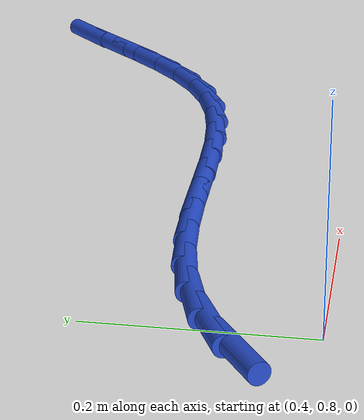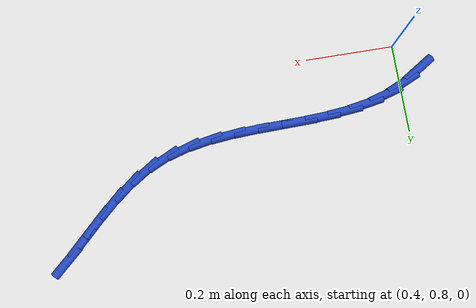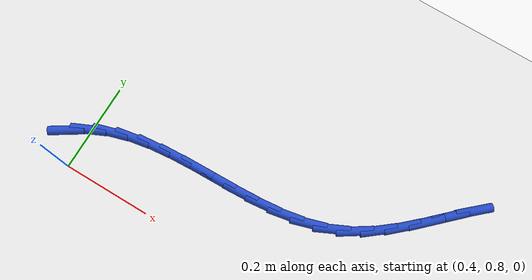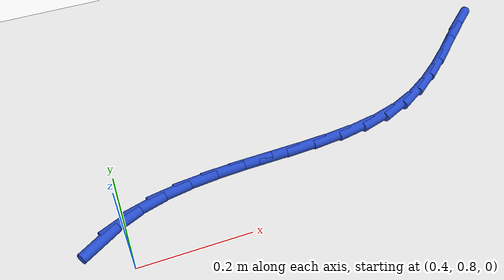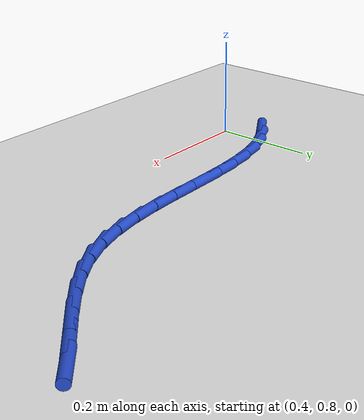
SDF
<sdf version="1.6">
 <world name="default">
  <model name="ground_plane">
   <static>1</static>
   <link name="link">
    <collision name="collision">
     <geometry><plane><normal>0 0 1</normal><size>100 100</size></plane></geometry>
     <surface><friction><ode><mu>100</mu><mu2>50</mu2></ode></friction></surface>
    </collision>
    <visual name="visual">
     <cast_shadows>0</cast_shadows>
     <geometry><plane><normal>0 0 1</normal><size>100 100</size></plane></geometry>
     <material>
      <script><uri>file://media/materials/scripts/gazebo.material</uri><name>Gazebo/WhiteGlow</name></script>
     </material>
    </visual>
   </link>
  </model>
  <model name="line">
   <link name="link_18">
    <pose>0.3543445734203267 0.8636933115231757 0.01 0 1.57 0.5698348710611841</pose>
    <collision name="collision">
     <geometry><cylinder><radius>0.01</radius><length>0.08</length></cylinder></geometry>
    </collision>
    <visual name="visual">
     <material>
      <script><name>Gazebo/Blue</name><uri>file://media/materials/scripts/gazebo.material</uri></script>
     </material>
     <geometry><cylinder><radius>0.01</radius><length>0.08</length></cylinder></geometry>
    </visual>
   </link>
   <link name="link_19">
    <pose>0.3951730558149943 0.8898535739217508 0.01 0 1.57 0.42413232272207957</pose>
    <collision name="collision">
     <geometry><cylinder><radius>0.01</radius><length>0.08</length></cylinder></geometry>
    </collision>
    <visual name="visual">
     <material>
      <script><name>Gazebo/Blue</name><uri>file://media/materials/scripts/gazebo.material</uri></script>
     </material>
     <geometry><cylinder><radius>0.01</radius><length>0.08</length></cylinder></geometry>
    </visual>
   </link>
   <link name="link_20">
    <pose>0.4393437593304431 0.9097983320072475 0.01 0 1.57 0.2817256883511118</pose>
    <collision name="collision">
     <geometry><cylinder><radius>0.01</radius><length>0.08</length></cylinder></geometry>
    </collision>
    <visual name="visual">
     <material>
      <script><name>Gazebo/Blue</name><uri>file://media/materials/scripts/gazebo.material</uri></script>
     </material>
     <geometry><cylinder><radius>0.01</radius><length>0.08</length></cylinder></geometry>
    </visual>
   </link>
   <link name="link_21">
    <pose>0.4867711848116862 0.9235249499548267 0.01 0 1.57 0.17152300022071781</pose>
    <collision name="collision">
     <geometry><cylinder><radius>0.01</radius><length>0.08</length></cylinder></geometry>
    </collision>
    <visual name="visual">
     <material>
      <script><name>Gazebo/Blue</name><uri>file://media/materials/scripts/gazebo.material</uri></script>
     </material>
     <geometry><cylinder><radius>0.01</radius><length>0.08</length></cylinder></geometry>
    </visual>
   </link>
   <link name="link_22">
    <pose>0.5368553760978376 0.9322007895211278 0.01 0 1.57 0.09409261308504</pose>
    <collision name="collision">
     <geometry><cylinder><radius>0.01</radius><length>0.08</length></cylinder></geometry>
    </collision>
    <visual name="visual">
     <material>
      <script><name>Gazebo/Blue</name><uri>file://media/materials/scripts/gazebo.material</uri></script>
     </material>
     <geometry><cylinder><radius>0.01</radius><length>0.08</length></cylinder></geometry>
    </visual>
   </link>
   <link name="link_23">
    <pose>0.5889422566244674 0.9371162951315637 0.01 0 1.57 0.04573571768627673</pose>
    <collision name="collision">
     <geometry><cylinder><radius>0.01</radius><length>0.08</length></cylinder></geometry>
    </collision>
    <visual name="visual">
     <material>
      <script><name>Gazebo/Blue</name><uri>file://media/materials/scripts/gazebo.material</uri></script>
     </material>
     <geometry><cylinder><radius>0.01</radius><length>0.08</length></cylinder></geometry>
    </visual>
   </link>
   <link name="link_24">
    <pose>0.642377749827145 0.9395619112115469 0.01 0 1.57 0.023387020796661953</pose>
    <collision name="collision">
     <geometry><cylinder><radius>0.01</radius><length>0.08</length></cylinder></geometry>
    </collision>
    <visual name="visual">
     <material>
      <script><name>Gazebo/Blue</name><uri>file://media/materials/scripts/gazebo.material</uri></script>
     </material>
     <geometry><cylinder><radius>0.01</radius><length>0.08</length></cylinder></geometry>
    </visual>
   </link>
   <link name="link_25">
    <pose>0.6965077791414405 0.9408280821864908 0.01 0 1.57 0.02541741343297647</pose>
    <collision name="collision">
     <geometry><cylinder><radius>0.01</radius><length>0.08</length></cylinder></geometry>
    </collision>
    <visual name="visual">
     <material>
      <script><name>Gazebo/Blue</name><uri>file://media/materials/scripts/gazebo.material</uri></script>
     </material>
     <geometry><cylinder><radius>0.01</radius><length>0.08</length></cylinder></geometry>
    </visual>
   </link>
   <link name="link_26">
    <pose>0.7506782680029233 0.9422052524818081 0.01 0 1.57 0.051835084882170944</pose>
    <collision name="collision">
     <geometry><cylinder><radius>0.01</radius><length>0.08</length></cylinder></geometry>
    </collision>
    <visual name="visual">
     <material>
      <script><name>Gazebo/Blue</name><uri>file://media/materials/scripts/gazebo.material</uri></script>
     </material>
     <geometry><cylinder><radius>0.01</radius><length>0.08</length></cylinder></geometry>
    </visual>
   </link>
   <link name="link_27">
    <pose>0.804235139847164 0.9449838665229118 0.01 0 1.57 0.10424094520519987</pose>
    <collision name="collision">
     <geometry><cylinder><radius>0.01</radius><length>0.08</length></cylinder></geometry>
    </collision>
    <visual name="visual">
     <material>
      <script><name>Gazebo/Blue</name><uri>file://media/materials/scripts/gazebo.material</uri></script>
     </material>
     <geometry><cylinder><radius>0.01</radius><length>0.08</length></cylinder></geometry>
    </visual>
   </link>
   <link name="link_28">
    <pose>0.8565243181097312 0.9504543687352144 0.01 0 1.57 0.18551952304503483</pose>
    <collision name="collision">
     <geometry><cylinder><radius>0.01</radius><length>0.08</length></cylinder></geometry>
    </collision>
    <visual name="visual">
     <material>
      <script><name>Gazebo/Blue</name><uri>file://media/materials/scripts/gazebo.material</uri></script>
     </material>
     <geometry><cylinder><radius>0.01</radius><length>0.08</length></cylinder></geometry>
    </visual>
   </link>
   <link name="link_29">
    <pose>0.9068917262261957 0.9599072035441296 0.01 0 1.57 0.2988910383332058</pose>
    <collision name="collision">
     <geometry><cylinder><radius>0.01</radius><length>0.08</length></cylinder></geometry>
    </collision>
    <visual name="visual">
     <material>
      <script><name>Gazebo/Blue</name><uri>file://media/materials/scripts/gazebo.material</uri></script>
     </material>
     <geometry><cylinder><radius>0.01</radius><length>0.08</length></cylinder></geometry>
    </visual>
   </link>
   <link name="link_30">
    <pose>0.9546832876321268 0.9746328153750697 0.01 0 1.57 0.44314500986465155</pose>
    <collision name="collision">
     <geometry><cylinder><radius>0.01</radius><length>0.08</length></cylinder></geometry>
    </collision>
    <visual name="visual">
     <material>
      <script><name>Gazebo/Blue</name><uri>file://media/materials/scripts/gazebo.material</uri></script>
     </material>
     <geometry><cylinder><radius>0.01</radius><length>0.08</length></cylinder></geometry>
    </visual>
   </link>
   <link name="link_31">
    <pose>0.9993039648195952 0.9958110510397098 0.01 0 1.57 0.579689639556957</pose>
    <collision name="collision">
     <geometry><cylinder><radius>0.01</radius><length>0.08</length></cylinder></geometry>
    </collision>
    <visual name="visual">
     <material>
      <script><name>Gazebo/Blue</name><uri>file://media/materials/scripts/gazebo.material</uri></script>
     </material>
     <geometry><cylinder><radius>0.01</radius><length>0.08</length></cylinder></geometry>
    </visual>
   </link>
   <link name="link_32">
    <pose>1.0409744091179232 1.0230937309160446 0.01 0 1.57 0.6792841769361144</pose>
    <collision name="collision">
     <geometry><cylinder><radius>0.01</radius><length>0.08</length></cylinder></geometry>
    </collision>
    <visual name="visual">
     <material>
      <script><name>Gazebo/Blue</name><uri>file://media/materials/scripts/gazebo.material</uri></script>
     </material>
     <geometry><cylinder><radius>0.01</radius><length>0.08</length></cylinder></geometry>
    </visual>
   </link>
   <link name="link_33">
    <pose>1.0805102676530278 1.0550180722839213 0.01 0 1.57 0.7424207594840871</pose>
    <collision name="collision">
     <geometry><cylinder><radius>0.01</radius><length>0.08</length></cylinder></geometry>
    </collision>
    <visual name="visual">
     <material>
      <script><name>Gazebo/Blue</name><uri>file://media/materials/scripts/gazebo.material</uri></script>
     </material>
     <geometry><cylinder><radius>0.01</radius><length>0.08</length></cylinder></geometry>
    </visual>
   </link>
   <link name="link_34">
    <pose>1.1187407062930197 1.0900959678208653 0.01 0 1.57 0.771830193548512</pose>
    <collision name="collision">
     <geometry><cylinder><radius>0.01</radius><length>0.08</length></cylinder></geometry>
    </collision>
    <visual name="visual">
     <material>
      <script><name>Gazebo/Blue</name><uri>file://media/materials/scripts/gazebo.material</uri></script>
     </material>
     <geometry><cylinder><radius>0.01</radius><length>0.08</length></cylinder></geometry>
    </visual>
   </link>
   <link name="link_35">
    <pose>1.156494890906009 1.126839310204401 0.01 0 1.57 0.7695864773913116</pose>
    <collision name="collision">
     <geometry><cylinder><radius>0.01</radius><length>0.08</length></cylinder></geometry>
    </collision>
    <visual name="visual">
     <material>
      <script><name>Gazebo/Blue</name><uri>file://media/materials/scripts/gazebo.material</uri></script>
     </material>
     <geometry><cylinder><radius>0.01</radius><length>0.08</length></cylinder></geometry>
    </visual>
   </link>
   <link name="link_36">
    <pose>1.1946019873601066 1.1637599921120545 0.01 0 1.57 0.7363147233643089</pose>
    <collision name="collision">
     <geometry><cylinder><radius>0.01</radius><length>0.08</length></cylinder></geometry>
    </collision>
    <visual name="visual">
     <material>
      <script><name>Gazebo/Blue</name><uri>file://media/materials/scripts/gazebo.material</uri></script>
     </material>
     <geometry><cylinder><radius>0.01</radius><length>0.08</length></cylinder></geometry>
    </visual>
   </link>
  </model>
 </world>
</sdf>
